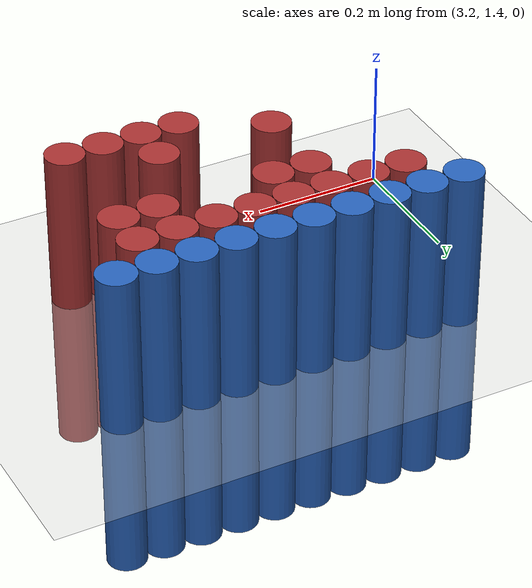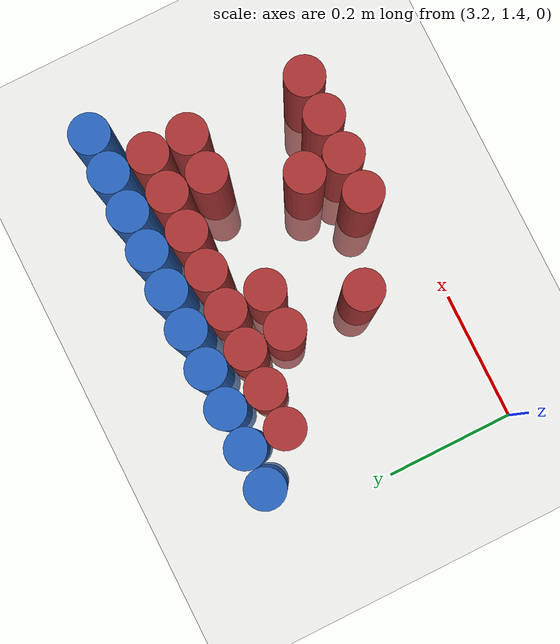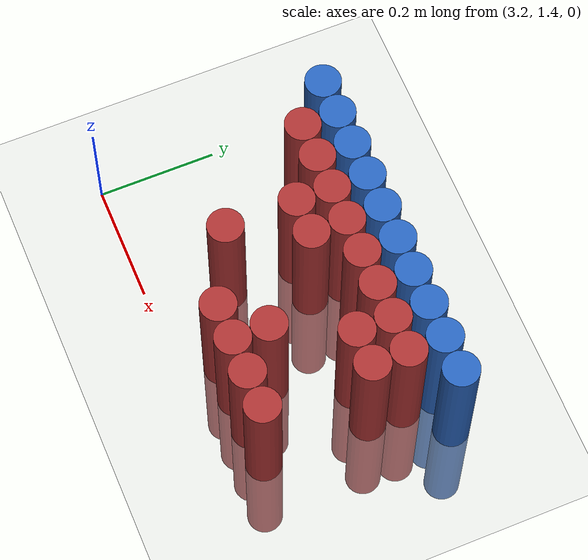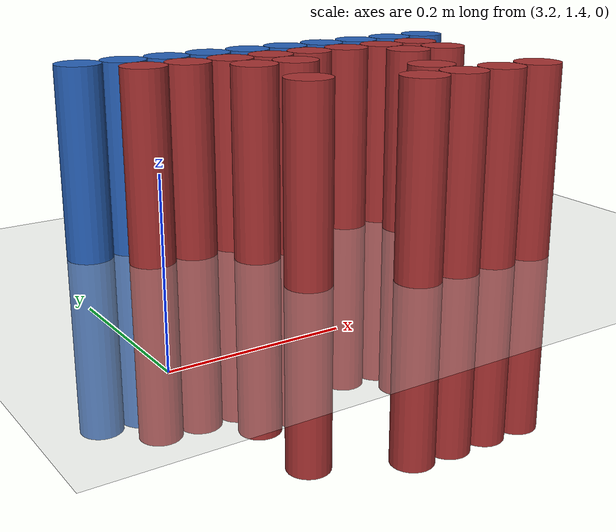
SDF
<sdf version="1.6">
 <world name="default">
  <model name="ground_plane">
   <static>1</static>
   <link name="link">
    <collision name="collision">
     <geometry><plane><normal>0 0 1</normal><size>100 100</size></plane></geometry>
     <surface><friction><ode><mu>100</mu><mu2>50</mu2></ode></friction></surface>
    </collision>
    <visual name="visual">
     <cast_shadows>0</cast_shadows>
     <geometry><plane><normal>0 0 1</normal><size>100 100</size></plane></geometry>
     <material>
      <script><uri>file://media/materials/scripts/gazebo.material</uri><name>Gazebo/Grey</name></script>
     </material>
    </visual>
   </link>
  </model>
  <model name="unit_cylinder_115">
   <static>1</static>
   <pose>3.270000 1.770000 0.000000 0.000000 0.000000 0.000000</pose>
   <link name="link">
    <inertial>
     <mass>1</mass>
     <inertia><ixx>0.145833</ixx><ixy>0</ixy><ixz>0</ixz><iyy>0.145833</iyy><iyz>0</iyz><izz>0.125</izz></inertia>
    </inertial>
    <collision name="collision">
     <geometry><cylinder><radius>0.030000</radius><length>0.5</length></cylinder></geometry>
    </collision>
    <visual name="visual">
     <geometry><cylinder><radius>0.030000</radius><length>0.5</length></cylinder></geometry>
     <material>
      <ambient>0.152000 0.379000 0.720000 1</ambient>
      <diffuse>0.152000 0.379000 0.720000 1</diffuse>
     </material>
     <material>
      <script><name>Gazebo/Grey</name><uri>file://media/materials/scripts/gazebo.material</uri></script>
     </material>
    </visual>
   </link>
  </model>
  <model name="unit_cylinder_116">
   <static>1</static>
   <pose>3.330000 1.770000 0.000000 0.000000 0.000000 0.000000</pose>
   <link name="link">
    <inertial>
     <mass>1</mass>
     <inertia><ixx>0.145833</ixx><ixy>0</ixy><ixz>0</ixz><iyy>0.145833</iyy><iyz>0</iyz><izz>0.125</izz></inertia>
    </inertial>
    <collision name="collision">
     <geometry><cylinder><radius>0.030000</radius><length>0.5</length></cylinder></geometry>
    </collision>
    <visual name="visual">
     <geometry><cylinder><radius>0.030000</radius><length>0.5</length></cylinder></geometry>
     <material>
      <ambient>0.152000 0.379000 0.720000 1</ambient>
      <diffuse>0.152000 0.379000 0.720000 1</diffuse>
     </material>
     <material>
      <script><name>Gazebo/Grey</name><uri>file://media/materials/scripts/gazebo.material</uri></script>
     </material>
    </visual>
   </link>
  </model>
  <model name="unit_cylinder_117">
   <static>1</static>
   <pose>3.390000 1.770000 0.000000 0.000000 0.000000 0.000000</pose>
   <link name="link">
    <inertial>
     <mass>1</mass>
     <inertia><ixx>0.145833</ixx><ixy>0</ixy><ixz>0</ixz><iyy>0.145833</iyy><iyz>0</iyz><izz>0.125</izz></inertia>
    </inertial>
    <collision name="collision">
     <geometry><cylinder><radius>0.030000</radius><length>0.5</length></cylinder></geometry>
    </collision>
    <visual name="visual">
     <geometry><cylinder><radius>0.030000</radius><length>0.5</length></cylinder></geometry>
     <material>
      <ambient>0.152000 0.379000 0.720000 1</ambient>
      <diffuse>0.152000 0.379000 0.720000 1</diffuse>
     </material>
     <material>
      <script><name>Gazebo/Grey</name><uri>file://media/materials/scripts/gazebo.material</uri></script>
     </material>
    </visual>
   </link>
  </model>
  <model name="unit_cylinder_118">
   <static>1</static>
   <pose>3.450000 1.770000 0.000000 0.000000 0.000000 0.000000</pose>
   <link name="link">
    <inertial>
     <mass>1</mass>
     <inertia><ixx>0.145833</ixx><ixy>0</ixy><ixz>0</ixz><iyy>0.145833</iyy><iyz>0</iyz><izz>0.125</izz></inertia>
    </inertial>
    <collision name="collision">
     <geometry><cylinder><radius>0.030000</radius><length>0.5</length></cylinder></geometry>
    </collision>
    <visual name="visual">
     <geometry><cylinder><radius>0.030000</radius><length>0.5</length></cylinder></geometry>
     <material>
      <ambient>0.152000 0.379000 0.720000 1</ambient>
      <diffuse>0.152000 0.379000 0.720000 1</diffuse>
     </material>
     <material>
      <script><name>Gazebo/Grey</name><uri>file://media/materials/scripts/gazebo.material</uri></script>
     </material>
    </visual>
   </link>
  </model>
  <model name="unit_cylinder_119">
   <static>1</static>
   <pose>3.510000 1.770000 0.000000 0.000000 0.000000 0.000000</pose>
   <link name="link">
    <inertial>
     <mass>1</mass>
     <inertia><ixx>0.145833</ixx><ixy>0</ixy><ixz>0</ixz><iyy>0.145833</iyy><iyz>0</iyz><izz>0.125</izz></inertia>
    </inertial>
    <collision name="collision">
     <geometry><cylinder><radius>0.030000</radius><length>0.5</length></cylinder></geometry>
    </collision>
    <visual name="visual">
     <geometry><cylinder><radius>0.030000</radius><length>0.5</length></cylinder></geometry>
     <material>
      <ambient>0.152000 0.379000 0.720000 1</ambient>
      <diffuse>0.152000 0.379000 0.720000 1</diffuse>
     </material>
     <material>
      <script><name>Gazebo/Grey</name><uri>file://media/materials/scripts/gazebo.material</uri></script>
     </material>
    </visual>
   </link>
  </model>
  <model name="unit_cylinder_120">
   <static>1</static>
   <pose>3.570000 1.770000 0.000000 0.000000 0.000000 0.000000</pose>
   <link name="link">
    <inertial>
     <mass>1</mass>
     <inertia><ixx>0.145833</ixx><ixy>0</ixy><ixz>0</ixz><iyy>0.145833</iyy><iyz>0</iyz><izz>0.125</izz></inertia>
    </inertial>
    <collision name="collision">
     <geometry><cylinder><radius>0.030000</radius><length>0.5</length></cylinder></geometry>
    </collision>
    <visual name="visual">
     <geometry><cylinder><radius>0.030000</radius><length>0.5</length></cylinder></geometry>
     <material>
      <ambient>0.152000 0.379000 0.720000 1</ambient>
      <diffuse>0.152000 0.379000 0.720000 1</diffuse>
     </material>
     <material>
      <script><name>Gazebo/Grey</name><uri>file://media/materials/scripts/gazebo.material</uri></script>
     </material>
    </visual>
   </link>
  </model>
  <model name="unit_cylinder_121">
   <static>1</static>
   <pose>3.630000 1.770000 0.000000 0.000000 0.000000 0.000000</pose>
   <link name="link">
    <inertial>
     <mass>1</mass>
     <inertia><ixx>0.145833</ixx><ixy>0</ixy><ixz>0</ixz><iyy>0.145833</iyy><iyz>0</iyz><izz>0.125</izz></inertia>
    </inertial>
    <collision name="collision">
     <geometry><cylinder><radius>0.030000</radius><length>0.5</length></cylinder></geometry>
    </collision>
    <visual name="visual">
     <geometry><cylinder><radius>0.030000</radius><length>0.5</length></cylinder></geometry>
     <material>
      <ambient>0.152000 0.379000 0.720000 1</ambient>
      <diffuse>0.152000 0.379000 0.720000 1</diffuse>
     </material>
     <material>
      <script><name>Gazebo/Grey</name><uri>file://media/materials/scripts/gazebo.material</uri></script>
     </material>
    </visual>
   </link>
  </model>
  <model name="unit_cylinder_122">
   <static>1</static>
   <pose>3.690000 1.770000 0.000000 0.000000 0.000000 0.000000</pose>
   <link name="link">
    <inertial>
     <mass>1</mass>
     <inertia><ixx>0.145833</ixx><ixy>0</ixy><ixz>0</ixz><iyy>0.145833</iyy><iyz>0</iyz><izz>0.125</izz></inertia>
    </inertial>
    <collision name="collision">
     <geometry><cylinder><radius>0.030000</radius><length>0.5</length></cylinder></geometry>
    </collision>
    <visual name="visual">
     <geometry><cylinder><radius>0.030000</radius><length>0.5</length></cylinder></geometry>
     <material>
      <ambient>0.152000 0.379000 0.720000 1</ambient>
      <diffuse>0.152000 0.379000 0.720000 1</diffuse>
     </material>
     <material>
      <script><name>Gazebo/Grey</name><uri>file://media/materials/scripts/gazebo.material</uri></script>
     </material>
    </visual>
   </link>
  </model>
  <model name="unit_cylinder_123">
   <static>1</static>
   <pose>3.750000 1.770000 0.000000 0.000000 0.000000 0.000000</pose>
   <link name="link">
    <inertial>
     <mass>1</mass>
     <inertia><ixx>0.145833</ixx><ixy>0</ixy><ixz>0</ixz><iyy>0.145833</iyy><iyz>0</iyz><izz>0.125</izz></inertia>
    </inertial>
    <collision name="collision">
     <geometry><cylinder><radius>0.030000</radius><length>0.5</length></cylinder></geometry>
    </collision>
    <visual name="visual">
     <geometry><cylinder><radius>0.030000</radius><length>0.5</length></cylinder></geometry>
     <material>
      <ambient>0.152000 0.379000 0.720000 1</ambient>
      <diffuse>0.152000 0.379000 0.720000 1</diffuse>
     </material>
     <material>
      <script><name>Gazebo/Grey</name><uri>file://media/materials/scripts/gazebo.material</uri></script>
     </material>
    </visual>
   </link>
  </model>
  <model name="unit_cylinder_124">
   <static>1</static>
   <pose>3.810000 1.770000 0.000000 0.000000 0.000000 0.000000</pose>
   <link name="link">
    <inertial>
     <mass>1</mass>
     <inertia><ixx>0.145833</ixx><ixy>0</ixy><ixz>0</ixz><iyy>0.145833</iyy><iyz>0</iyz><izz>0.125</izz></inertia>
    </inertial>
    <collision name="collision">
     <geometry><cylinder><radius>0.030000</radius><length>0.5</length></cylinder></geometry>
    </collision>
    <visual name="visual">
     <geometry><cylinder><radius>0.030000</radius><length>0.5</length></cylinder></geometry>
     <material>
      <ambient>0.152000 0.379000 0.720000 1</ambient>
      <diffuse>0.152000 0.379000 0.720000 1</diffuse>
     </material>
     <material>
      <script><name>Gazebo/Grey</name><uri>file://media/materials/scripts/gazebo.material</uri></script>
     </material>
    </visual>
   </link>
  </model>
  <model name="unit_cylinder_141">
   <static>1</static>
   <pose>3.330000 1.710000 0.000000 0.000000 0.000000 0.000000</pose>
   <link name="link">
    <inertial>
     <mass>1</mass>
     <inertia><ixx>0.145833</ixx><ixy>0</ixy><ixz>0</ixz><iyy>0.145833</iyy><iyz>0</iyz><izz>0.125</izz></inertia>
    </inertial>
    <collision name="collision">
     <geometry><cylinder><radius>0.030000</radius><length>0.5</length></cylinder></geometry>
    </collision>
    <visual name="visual">
     <geometry><cylinder><radius>0.030000</radius><length>0.5</length></cylinder></geometry>
     <material>
      <ambient>0.648000 0.192000 0.192000 1</ambient>
      <diffuse>0.648000 0.192000 0.192000 1</diffuse>
     </material>
     <material>
      <script><name>Gazebo/Grey</name><uri>file://media/materials/scripts/gazebo.material</uri></script>
     </material>
    </visual>
   </link>
  </model>
  <model name="unit_cylinder_142">
   <static>1</static>
   <pose>3.390000 1.710000 0.000000 0.000000 0.000000 0.000000</pose>
   <link name="link">
    <inertial>
     <mass>1</mass>
     <inertia><ixx>0.145833</ixx><ixy>0</ixy><ixz>0</ixz><iyy>0.145833</iyy><iyz>0</iyz><izz>0.125</izz></inertia>
    </inertial>
    <collision name="collision">
     <geometry><cylinder><radius>0.030000</radius><length>0.5</length></cylinder></geometry>
    </collision>
    <visual name="visual">
     <geometry><cylinder><radius>0.030000</radius><length>0.5</length></cylinder></geometry>
     <material>
      <ambient>0.648000 0.192000 0.192000 1</ambient>
      <diffuse>0.648000 0.192000 0.192000 1</diffuse>
     </material>
     <material>
      <script><name>Gazebo/Grey</name><uri>file://media/materials/scripts/gazebo.material</uri></script>
     </material>
    </visual>
   </link>
  </model>
  <model name="unit_cylinder_143">
   <static>1</static>
   <pose>3.450000 1.710000 0.000000 0.000000 0.000000 0.000000</pose>
   <link name="link">
    <inertial>
     <mass>1</mass>
     <inertia><ixx>0.145833</ixx><ixy>0</ixy><ixz>0</ixz><iyy>0.145833</iyy><iyz>0</iyz><izz>0.125</izz></inertia>
    </inertial>
    <collision name="collision">
     <geometry><cylinder><radius>0.030000</radius><length>0.5</length></cylinder></geometry>
    </collision>
    <visual name="visual">
     <geometry><cylinder><radius>0.030000</radius><length>0.5</length></cylinder></geometry>
     <material>
      <ambient>0.648000 0.192000 0.192000 1</ambient>
      <diffuse>0.648000 0.192000 0.192000 1</diffuse>
     </material>
     <material>
      <script><name>Gazebo/Grey</name><uri>file://media/materials/scripts/gazebo.material</uri></script>
     </material>
    </visual>
   </link>
  </model>
  <model name="unit_cylinder_144">
   <static>1</static>
   <pose>3.510000 1.710000 0.000000 0.000000 0.000000 0.000000</pose>
   <link name="link">
    <inertial>
     <mass>1</mass>
     <inertia><ixx>0.145833</ixx><ixy>0</ixy><ixz>0</ixz><iyy>0.145833</iyy><iyz>0</iyz><izz>0.125</izz></inertia>
    </inertial>
    <collision name="collision">
     <geometry><cylinder><radius>0.030000</radius><length>0.5</length></cylinder></geometry>
    </collision>
    <visual name="visual">
     <geometry><cylinder><radius>0.030000</radius><length>0.5</length></cylinder></geometry>
     <material>
      <ambient>0.648000 0.192000 0.192000 1</ambient>
      <diffuse>0.648000 0.192000 0.192000 1</diffuse>
     </material>
     <material>
      <script><name>Gazebo/Grey</name><uri>file://media/materials/scripts/gazebo.material</uri></script>
     </material>
    </visual>
   </link>
  </model>
  <model name="unit_cylinder_145">
   <static>1</static>
   <pose>3.570000 1.710000 0.000000 0.000000 0.000000 0.000000</pose>
   <link name="link">
    <inertial>
     <mass>1</mass>
     <inertia><ixx>0.145833</ixx><ixy>0</ixy><ixz>0</ixz><iyy>0.145833</iyy><iyz>0</iyz><izz>0.125</izz></inertia>
    </inertial>
    <collision name="collision">
     <geometry><cylinder><radius>0.030000</radius><length>0.5</length></cylinder></geometry>
    </collision>
    <visual name="visual">
     <geometry><cylinder><radius>0.030000</radius><length>0.5</length></cylinder></geometry>
     <material>
      <ambient>0.648000 0.192000 0.192000 1</ambient>
      <diffuse>0.648000 0.192000 0.192000 1</diffuse>
     </material>
     <material>
      <script><name>Gazebo/Grey</name><uri>file://media/materials/scripts/gazebo.material</uri></script>
     </material>
    </visual>
   </link>
  </model>
  <model name="unit_cylinder_146">
   <static>1</static>
   <pose>3.630000 1.710000 0.000000 0.000000 0.000000 0.000000</pose>
   <link name="link">
    <inertial>
     <mass>1</mass>
     <inertia><ixx>0.145833</ixx><ixy>0</ixy><ixz>0</ixz><iyy>0.145833</iyy><iyz>0</iyz><izz>0.125</izz></inertia>
    </inertial>
    <collision name="collision">
     <geometry><cylinder><radius>0.030000</radius><length>0.5</length></cylinder></geometry>
    </collision>
    <visual name="visual">
     <geometry><cylinder><radius>0.030000</radius><length>0.5</length></cylinder></geometry>
     <material>
      <ambient>0.648000 0.192000 0.192000 1</ambient>
      <diffuse>0.648000 0.192000 0.192000 1</diffuse>
     </material>
     <material>
      <script><name>Gazebo/Grey</name><uri>file://media/materials/scripts/gazebo.material</uri></script>
     </material>
    </visual>
   </link>
  </model>
  <model name="unit_cylinder_147">
   <static>1</static>
   <pose>3.690000 1.710000 0.000000 0.000000 0.000000 0.000000</pose>
   <link name="link">
    <inertial>
     <mass>1</mass>
     <inertia><ixx>0.145833</ixx><ixy>0</ixy><ixz>0</ixz><iyy>0.145833</iyy><iyz>0</iyz><izz>0.125</izz></inertia>
    </inertial>
    <collision name="collision">
     <geometry><cylinder><radius>0.030000</radius><length>0.5</length></cylinder></geometry>
    </collision>
    <visual name="visual">
     <geometry><cylinder><radius>0.030000</radius><length>0.5</length></cylinder></geometry>
     <material>
      <ambient>0.648000 0.192000 0.192000 1</ambient>
      <diffuse>0.648000 0.192000 0.192000 1</diffuse>
     </material>
     <material>
      <script><name>Gazebo/Grey</name><uri>file://media/materials/scripts/gazebo.material</uri></script>
     </material>
    </visual>
   </link>
  </model>
  <model name="unit_cylinder_148">
   <static>1</static>
   <pose>3.750000 1.710000 0.000000 0.000000 0.000000 0.000000</pose>
   <link name="link">
    <inertial>
     <mass>1</mass>
     <inertia><ixx>0.145833</ixx><ixy>0</ixy><ixz>0</ixz><iyy>0.145833</iyy><iyz>0</iyz><izz>0.125</izz></inertia>
    </inertial>
    <collision name="collision">
     <geometry><cylinder><radius>0.030000</radius><length>0.5</length></cylinder></geometry>
    </collision>
    <visual name="visual">
     <geometry><cylinder><radius>0.030000</radius><length>0.5</length></cylinder></geometry>
     <material>
      <ambient>0.648000 0.192000 0.192000 1</ambient>
      <diffuse>0.648000 0.192000 0.192000 1</diffuse>
     </material>
     <material>
      <script><name>Gazebo/Grey</name><uri>file://media/materials/scripts/gazebo.material</uri></script>
     </material>
    </visual>
   </link>
  </model>
  <model name="unit_cylinder_156">
   <static>1</static>
   <pose>3.450000 1.650000 0.000000 0.000000 0.000000 0.000000</pose>
   <link name="link">
    <inertial>
     <mass>1</mass>
     <inertia><ixx>0.145833</ixx><ixy>0</ixy><ixz>0</ixz><iyy>0.145833</iyy><iyz>0</iyz><izz>0.125</izz></inertia>
    </inertial>
    <collision name="collision">
     <geometry><cylinder><radius>0.030000</radius><length>0.5</length></cylinder></geometry>
    </collision>
    <visual name="visual">
     <geometry><cylinder><radius>0.030000</radius><length>0.5</length></cylinder></geometry>
     <material>
      <ambient>0.648000 0.192000 0.192000 1</ambient>
      <diffuse>0.648000 0.192000 0.192000 1</diffuse>
     </material>
     <material>
      <script><name>Gazebo/Grey</name><uri>file://media/materials/scripts/gazebo.material</uri></script>
     </material>
    </visual>
   </link>
  </model>
  <model name="unit_cylinder_157">
   <static>1</static>
   <pose>3.510000 1.650000 0.000000 0.000000 0.000000 0.000000</pose>
   <link name="link">
    <inertial>
     <mass>1</mass>
     <inertia><ixx>0.145833</ixx><ixy>0</ixy><ixz>0</ixz><iyy>0.145833</iyy><iyz>0</iyz><izz>0.125</izz></inertia>
    </inertial>
    <collision name="collision">
     <geometry><cylinder><radius>0.030000</radius><length>0.5</length></cylinder></geometry>
    </collision>
    <visual name="visual">
     <geometry><cylinder><radius>0.030000</radius><length>0.5</length></cylinder></geometry>
     <material>
      <ambient>0.648000 0.192000 0.192000 1</ambient>
      <diffuse>0.648000 0.192000 0.192000 1</diffuse>
     </material>
     <material>
      <script><name>Gazebo/Grey</name><uri>file://media/materials/scripts/gazebo.material</uri></script>
     </material>
    </visual>
   </link>
  </model>
  <model name="unit_cylinder_158">
   <static>1</static>
   <pose>3.690000 1.650000 0.000000 0.000000 0.000000 0.000000</pose>
   <link name="link">
    <inertial>
     <mass>1</mass>
     <inertia><ixx>0.145833</ixx><ixy>0</ixy><ixz>0</ixz><iyy>0.145833</iyy><iyz>0</iyz><izz>0.125</izz></inertia>
    </inertial>
    <collision name="collision">
     <geometry><cylinder><radius>0.030000</radius><length>0.5</length></cylinder></geometry>
    </collision>
    <visual name="visual">
     <geometry><cylinder><radius>0.030000</radius><length>0.5</length></cylinder></geometry>
     <material>
      <ambient>0.648000 0.192000 0.192000 1</ambient>
      <diffuse>0.648000 0.192000 0.192000 1</diffuse>
     </material>
     <material>
      <script><name>Gazebo/Grey</name><uri>file://media/materials/scripts/gazebo.material</uri></script>
     </material>
    </visual>
   </link>
  </model>
  <model name="unit_cylinder_159">
   <static>1</static>
   <pose>3.750000 1.650000 0.000000 0.000000 0.000000 0.000000</pose>
   <link name="link">
    <inertial>
     <mass>1</mass>
     <inertia><ixx>0.145833</ixx><ixy>0</ixy><ixz>0</ixz><iyy>0.145833</iyy><iyz>0</iyz><izz>0.125</izz></inertia>
    </inertial>
    <collision name="collision">
     <geometry><cylinder><radius>0.030000</radius><length>0.5</length></cylinder></geometry>
    </collision>
    <visual name="visual">
     <geometry><cylinder><radius>0.030000</radius><length>0.5</length></cylinder></geometry>
     <material>
      <ambient>0.648000 0.192000 0.192000 1</ambient>
      <diffuse>0.648000 0.192000 0.192000 1</diffuse>
     </material>
     <material>
      <script><name>Gazebo/Grey</name><uri>file://media/materials/scripts/gazebo.material</uri></script>
     </material>
    </visual>
   </link>
  </model>
  <model name="unit_cylinder_169">
   <static>1</static>
   <pose>3.450000 1.530000 0.000000 0.000000 0.000000 0.000000</pose>
   <link name="link">
    <inertial>
     <mass>1</mass>
     <inertia><ixx>0.145833</ixx><ixy>0</ixy><ixz>0</ixz><iyy>0.145833</iyy><iyz>0</iyz><izz>0.125</izz></inertia>
    </inertial>
    <collision name="collision">
     <geometry><cylinder><radius>0.030000</radius><length>0.5</length></cylinder></geometry>
    </collision>
    <visual name="visual">
     <geometry><cylinder><radius>0.030000</radius><length>0.5</length></cylinder></geometry>
     <material>
      <ambient>0.648000 0.192000 0.192000 1</ambient>
      <diffuse>0.648000 0.192000 0.192000 1</diffuse>
     </material>
     <material>
      <script><name>Gazebo/Grey</name><uri>file://media/materials/scripts/gazebo.material</uri></script>
     </material>
    </visual>
   </link>
  </model>
  <model name="unit_cylinder_170">
   <static>1</static>
   <pose>3.630000 1.530000 0.000000 0.000000 0.000000 0.000000</pose>
   <link name="link">
    <inertial>
     <mass>1</mass>
     <inertia><ixx>0.145833</ixx><ixy>0</ixy><ixz>0</ixz><iyy>0.145833</iyy><iyz>0</iyz><izz>0.125</izz></inertia>
    </inertial>
    <collision name="collision">
     <geometry><cylinder><radius>0.030000</radius><length>0.5</length></cylinder></geometry>
    </collision>
    <visual name="visual">
     <geometry><cylinder><radius>0.030000</radius><length>0.5</length></cylinder></geometry>
     <material>
      <ambient>0.648000 0.192000 0.192000 1</ambient>
      <diffuse>0.648000 0.192000 0.192000 1</diffuse>
     </material>
     <material>
      <script><name>Gazebo/Grey</name><uri>file://media/materials/scripts/gazebo.material</uri></script>
     </material>
    </visual>
   </link>
  </model>
  <model name="unit_cylinder_180">
   <static>1</static>
   <pose>3.570000 1.470000 0.000000 0.000000 0.000000 0.000000</pose>
   <link name="link">
    <inertial>
     <mass>1</mass>
     <inertia><ixx>0.145833</ixx><ixy>0</ixy><ixz>0</ixz><iyy>0.145833</iyy><iyz>0</iyz><izz>0.125</izz></inertia>
    </inertial>
    <collision name="collision">
     <geometry><cylinder><radius>0.030000</radius><length>0.5</length></cylinder></geometry>
    </collision>
    <visual name="visual">
     <geometry><cylinder><radius>0.030000</radius><length>0.5</length></cylinder></geometry>
     <material>
      <ambient>0.648000 0.192000 0.192000 1</ambient>
      <diffuse>0.648000 0.192000 0.192000 1</diffuse>
     </material>
     <material>
      <script><name>Gazebo/Grey</name><uri>file://media/materials/scripts/gazebo.material</uri></script>
     </material>
    </visual>
   </link>
  </model>
  <model name="unit_cylinder_181">
   <static>1</static>
   <pose>3.630000 1.470000 0.000000 0.000000 0.000000 0.000000</pose>
   <link name="link">
    <inertial>
     <mass>1</mass>
     <inertia><ixx>0.145833</ixx><ixy>0</ixy><ixz>0</ixz><iyy>0.145833</iyy><iyz>0</iyz><izz>0.125</izz></inertia>
    </inertial>
    <collision name="collision">
     <geometry><cylinder><radius>0.030000</radius><length>0.5</length></cylinder></geometry>
    </collision>
    <visual name="visual">
     <geometry><cylinder><radius>0.030000</radius><length>0.5</length></cylinder></geometry>
     <material>
      <ambient>0.648000 0.192000 0.192000 1</ambient>
      <diffuse>0.648000 0.192000 0.192000 1</diffuse>
     </material>
     <material>
      <script><name>Gazebo/Grey</name><uri>file://media/materials/scripts/gazebo.material</uri></script>
     </material>
    </visual>
   </link>
  </model>
  <model name="unit_cylinder_182">
   <static>1</static>
   <pose>3.690000 1.470000 0.000000 0.000000 0.000000 0.000000</pose>
   <link name="link">
    <inertial>
     <mass>1</mass>
     <inertia><ixx>0.145833</ixx><ixy>0</ixy><ixz>0</ixz><iyy>0.145833</iyy><iyz>0</iyz><izz>0.125</izz></inertia>
    </inertial>
    <collision name="collision">
     <geometry><cylinder><radius>0.030000</radius><length>0.5</length></cylinder></geometry>
    </collision>
    <visual name="visual">
     <geometry><cylinder><radius>0.030000</radius><length>0.5</length></cylinder></geometry>
     <material>
      <ambient>0.648000 0.192000 0.192000 1</ambient>
      <diffuse>0.648000 0.192000 0.192000 1</diffuse>
     </material>
     <material>
      <script><name>Gazebo/Grey</name><uri>file://media/materials/scripts/gazebo.material</uri></script>
     </material>
    </visual>
   </link>
  </model>
  <model name="unit_cylinder_183">
   <static>1</static>
   <pose>3.750000 1.470000 0.000000 0.000000 0.000000 0.000000</pose>
   <link name="link">
    <inertial>
     <mass>1</mass>
     <inertia><ixx>0.145833</ixx><ixy>0</ixy><ixz>0</ixz><iyy>0.145833</iyy><iyz>0</iyz><izz>0.125</izz></inertia>
    </inertial>
    <collision name="collision">
     <geometry><cylinder><radius>0.030000</radius><length>0.5</length></cylinder></geometry>
    </collision>
    <visual name="visual">
     <geometry><cylinder><radius>0.030000</radius><length>0.5</length></cylinder></geometry>
     <material>
      <ambient>0.648000 0.192000 0.192000 1</ambient>
      <diffuse>0.648000 0.192000 0.192000 1</diffuse>
     </material>
     <material>
      <script><name>Gazebo/Grey</name><uri>file://media/materials/scripts/gazebo.material</uri></script>
     </material>
    </visual>
   </link>
  </model>
 </world>
</sdf>
